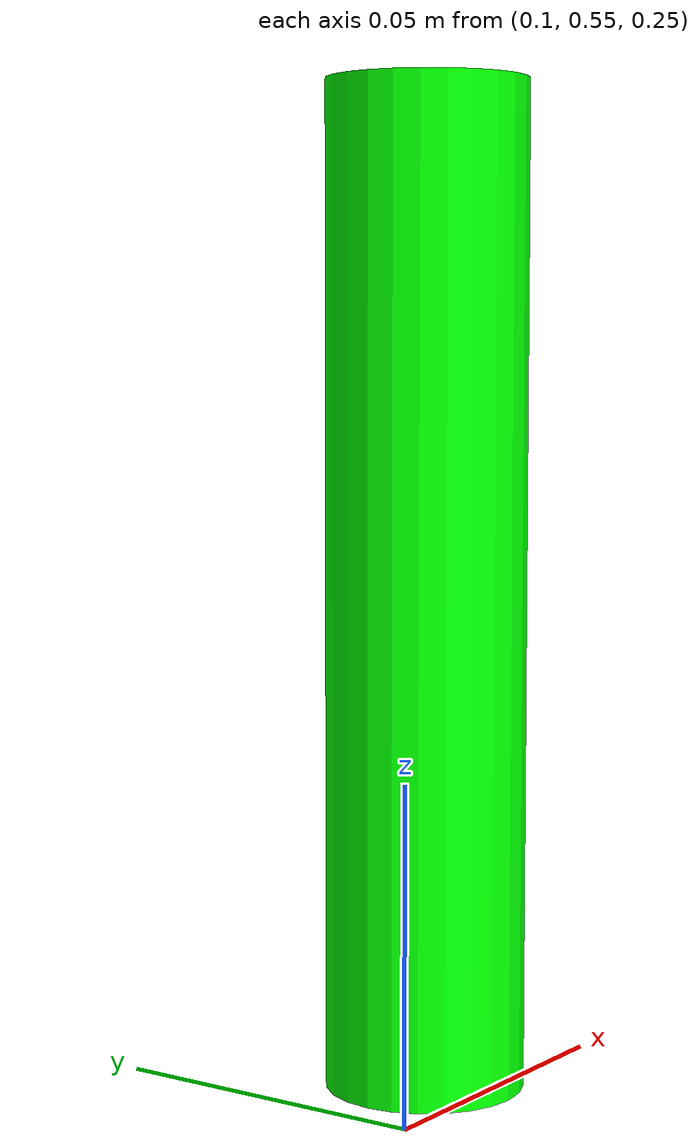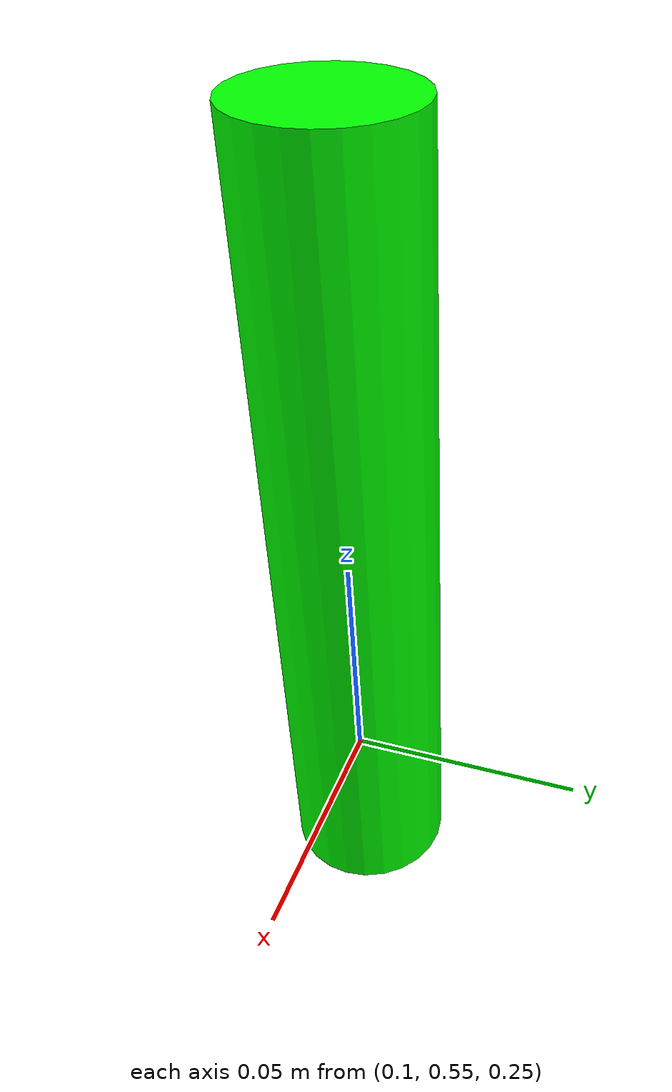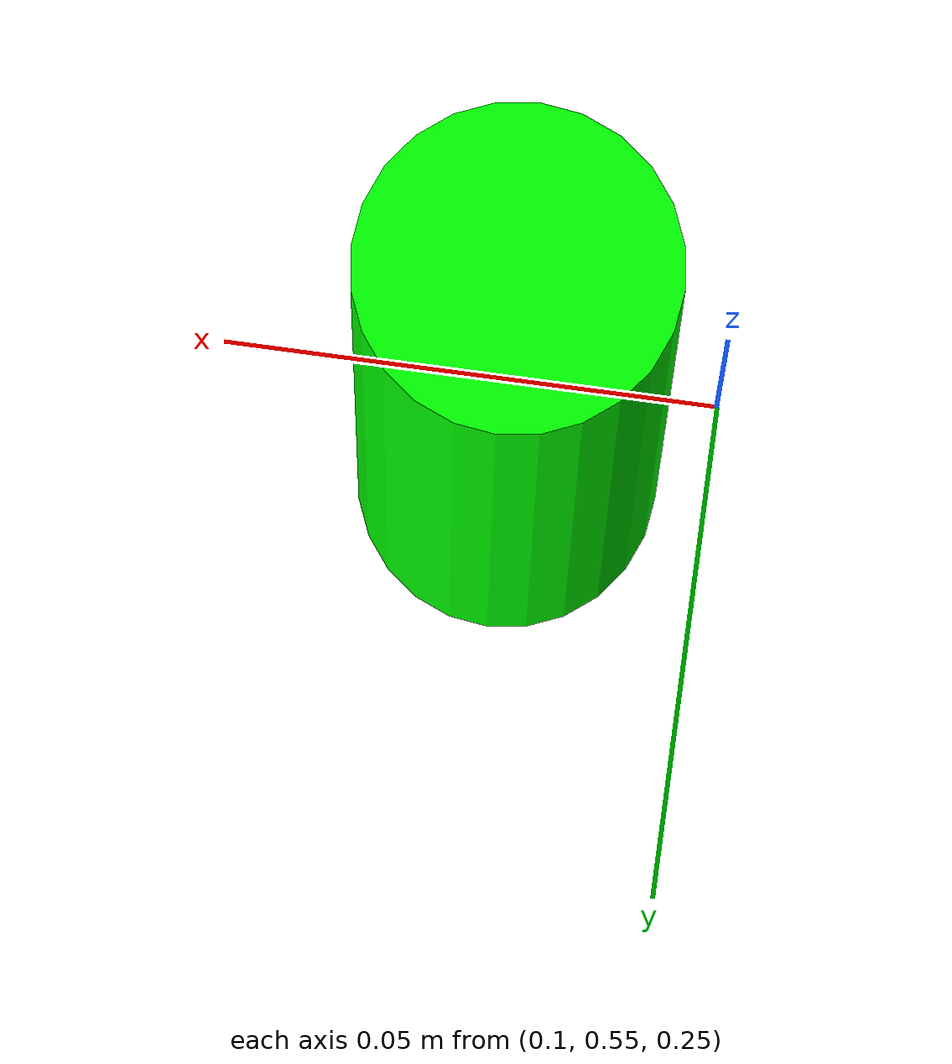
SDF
<?xml version="1.0" ?>
<sdf version="1.6">
  <model name="test_cylinder">
    <static>false</static>
    <pose>0.12 0.56 0.325 0 0 0</pose>
    <link name="cylinder_link">
      <collision name="collision">
        <geometry>
          <cylinder>
            <radius>0.015</radius>
            <length>0.15</length>
          </cylinder>
        </geometry>
      </collision>
      <visual name="visual">
        <geometry>
          <cylinder>
            <radius>0.015</radius>
            <length>0.15</length>
          </cylinder>
        </geometry>
        <material>
          <ambient>0 1 0 1</ambient>
          <diffuse>0 1 0 1</diffuse>
        </material>
      </visual>
      <inertial>
        <mass>1.0</mass>
      </inertial>
    </link>
  </model>
</sdf>
